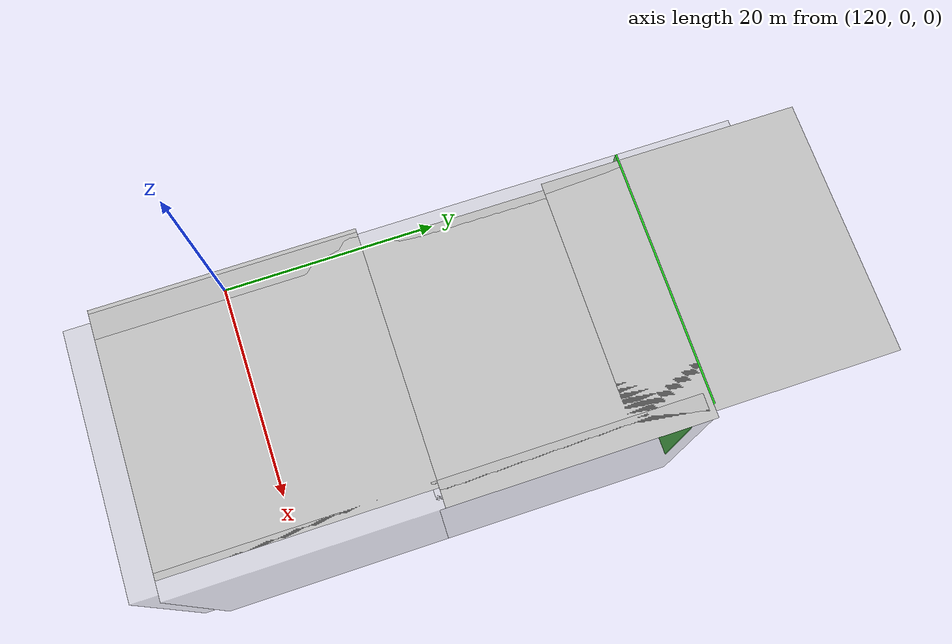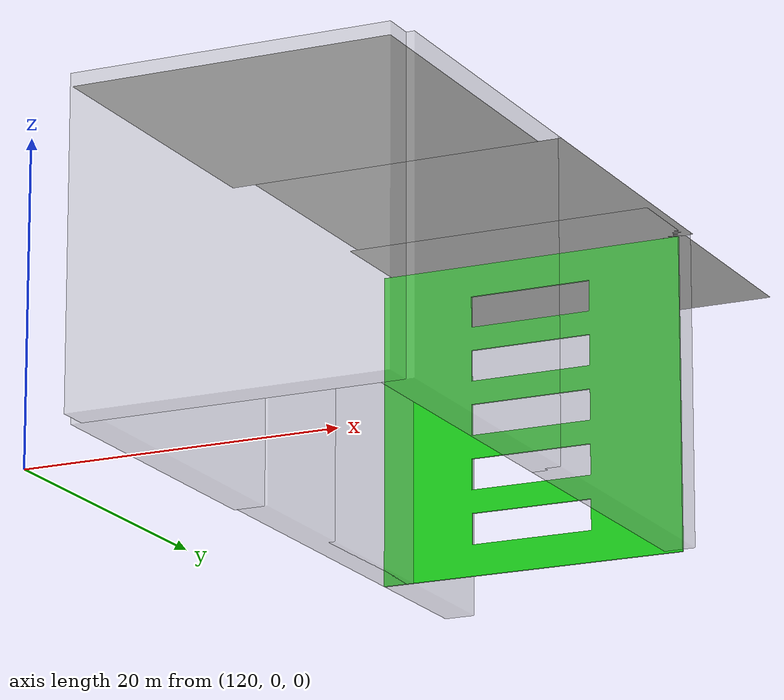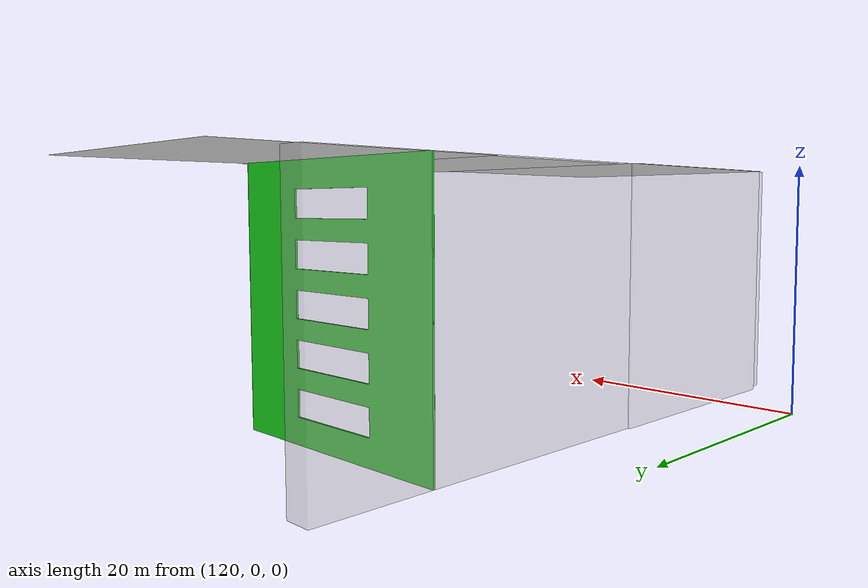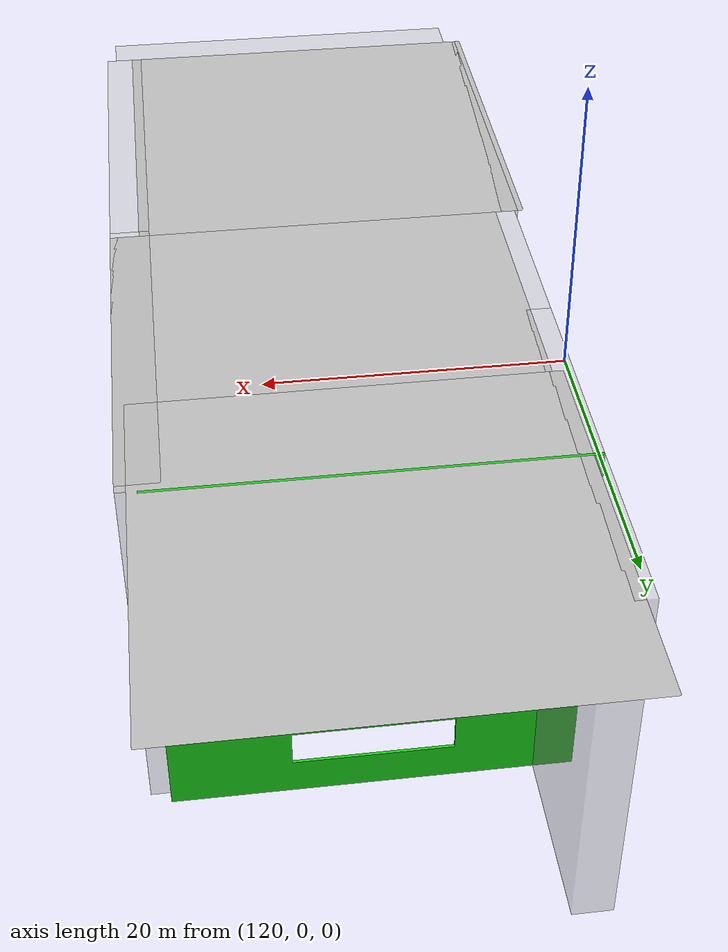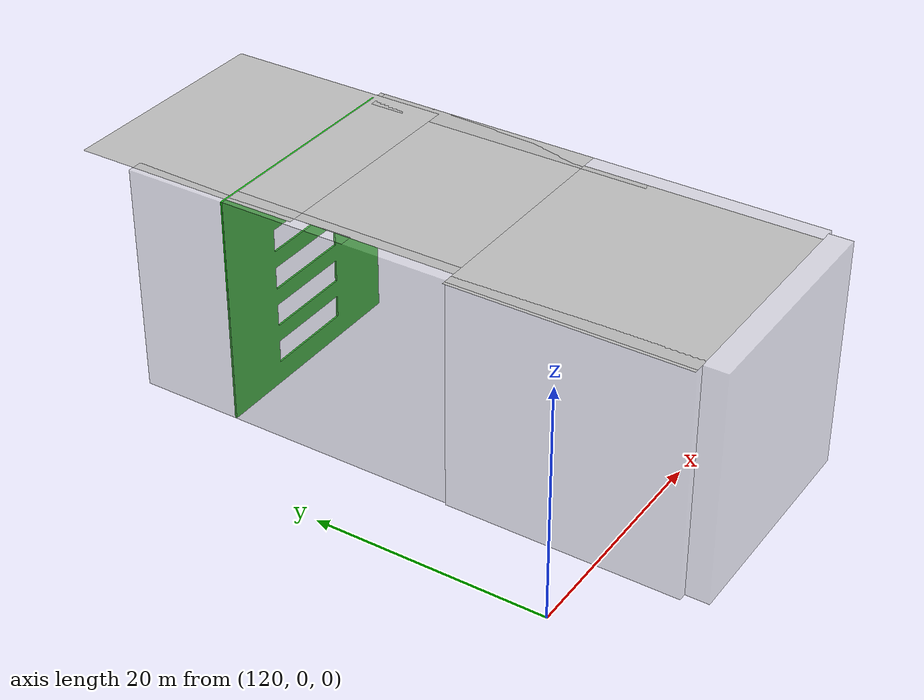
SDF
<?xml version='1.0'?>
<sdf version='1.7'>
  <model name='race_1_011'>
    <link name='link_clone_20'>
      <self_collide>0</self_collide>
      <enable_wind>0</enable_wind>
      <kinematic>0</kinematic>
      <pose>137.494 -8 10 1.5708 -0 0</pose>
      <visual name='visual'>
        <cast_shadows>1</cast_shadows>
        <transparency>0.6</transparency>
        <geometry>
          <box>
            <size>20 20 2</size>
          </box>
        </geometry>
        <material>
          <script>
            <uri>model://new_wall/materials/scripts</uri>
            <uri>model://new_wall/materials/textures/</uri>
            <name>NewWall/Image</name>
          </script>
          <shader type='pixel'/>
        </material>
        <pose>0 0 0 0 -0 0</pose>
      </visual>
      <collision name='collision'>
        <laser_retro>0</laser_retro>
        <max_contacts>10</max_contacts>
        <pose>0 0 0 0 -0 0</pose>
        <geometry>
          <box>
            <size>20 20 2</size>
          </box>
        </geometry>
        <surface>
          <friction>
            <ode>
              <mu>1</mu>
              <mu2>1</mu2>
              <fdir1>0 0 0</fdir1>
              <slip1>0</slip1>
              <slip2>0</slip2>
            </ode>
            <torsional>
              <coefficient>1</coefficient>
              <patch_radius>0</patch_radius>
              <surface_radius>0</surface_radius>
              <use_patch_radius>1</use_patch_radius>
              <ode>
                <slip>0</slip>
              </ode>
            </torsional>
          </friction>
          <bounce>
            <restitution_coefficient>0</restitution_coefficient>
            <threshold>1e+06</threshold>
          </bounce>
          <contact>
            <collide_without_contact>0</collide_without_contact>
            <collide_without_contact_bitmask>1</collide_without_contact_bitmask>
            <collide_bitmask>1</collide_bitmask>
            <ode>
              <soft_cfm>0</soft_cfm>
              <soft_erp>0.2</soft_erp>
              <kp>1e+13</kp>
              <kd>1</kd>
              <max_vel>0.01</max_vel>
              <min_depth>0</min_depth>
            </ode>
            <bullet>
              <split_impulse>1</split_impulse>
              <split_impulse_penetration_threshold>-0.01</split_impulse_penetration_threshold>
              <soft_cfm>0</soft_cfm>
              <soft_erp>0.2</soft_erp>
              <kp>1e+13</kp>
              <kd>1</kd>
            </bullet>
          </contact>
        </surface>
      </collision>
    </link>
    <link name='link_clone_3_clone_10'>
      <self_collide>0</self_collide>
      <enable_wind>0</enable_wind>
      <kinematic>0</kinematic>
      <pose>128 32 10 1.5708 -0 1.5708</pose>
      <visual name='visual'>
        <cast_shadows>1</cast_shadows>
        <transparency>0.6</transparency>
        <geometry>
          <box>
            <size>20 20 2</size>
          </box>
        </geometry>
        <material>
          <script>
            <uri>model://new_wall/materials/scripts</uri>
            <uri>model://new_wall/materials/textures/</uri>
            <name>NewWall/Image</name>
          </script>
          <shader type='pixel'/>
        </material>
        <pose>0 0 0 0 -0 0</pose>
      </visual>
      <collision name='collision'>
        <laser_retro>0</laser_retro>
        <max_contacts>10</max_contacts>
        <pose>0 0 0 0 -0 0</pose>
        <geometry>
          <box>
            <size>20 20 2</size>
          </box>
        </geometry>
        <surface>
          <friction>
            <ode>
              <mu>1</mu>
              <mu2>1</mu2>
              <fdir1>0 0 0</fdir1>
              <slip1>0</slip1>
              <slip2>0</slip2>
            </ode>
            <torsional>
              <coefficient>1</coefficient>
              <patch_radius>0</patch_radius>
              <surface_radius>0</surface_radius>
              <use_patch_radius>1</use_patch_radius>
              <ode>
                <slip>0</slip>
              </ode>
            </torsional>
          </friction>
          <bounce>
            <restitution_coefficient>0</restitution_coefficient>
            <threshold>1e+06</threshold>
          </bounce>
          <contact>
            <collide_without_contact>0</collide_without_contact>
            <collide_without_contact_bitmask>1</collide_without_contact_bitmask>
            <collide_bitmask>1</collide_bitmask>
            <ode>
              <soft_cfm>0</soft_cfm>
              <soft_erp>0.2</soft_erp>
              <kp>1e+13</kp>
              <kd>1</kd>
              <max_vel>0.01</max_vel>
              <min_depth>0</min_depth>
            </ode>
            <bullet>
              <split_impulse>1</split_impulse>
              <split_impulse_penetration_threshold>-0.01</split_impulse_penetration_threshold>
              <soft_cfm>0</soft_cfm>
              <soft_erp>0.2</soft_erp>
              <kp>1e+13</kp>
              <kd>1</kd>
            </bullet>
          </contact>
        </surface>
      </collision>
    </link>
    <link name='link_clone_3_clone_11'>
      <self_collide>0</self_collide>
      <enable_wind>0</enable_wind>
      <kinematic>0</kinematic>
      <pose>147 22.5682 10 1.5708 -0 1.5708</pose>
      <visual name='visual'>
        <cast_shadows>1</cast_shadows>
        <transparency>0.6</transparency>
        <geometry>
          <box>
            <size>20 20 2</size>
          </box>
        </geometry>
        <material>
          <script>
            <uri>model://new_wall/materials/scripts</uri>
            <uri>model://new_wall/materials/textures/</uri>
            <name>NewWall/Image</name>
          </script>
          <shader type='pixel'/>
        </material>
        <pose>0 0 0 0 -0 0</pose>
      </visual>
      <collision name='collision'>
        <laser_retro>0</laser_retro>
        <max_contacts>10</max_contacts>
        <pose>0 0 0 0 -0 0</pose>
        <geometry>
          <box>
            <size>20 20 2</size>
          </box>
        </geometry>
        <surface>
          <friction>
            <ode>
              <mu>1</mu>
              <mu2>1</mu2>
              <fdir1>0 0 0</fdir1>
              <slip1>0</slip1>
              <slip2>0</slip2>
            </ode>
            <torsional>
              <coefficient>1</coefficient>
              <patch_radius>0</patch_radius>
              <surface_radius>0</surface_radius>
              <use_patch_radius>1</use_patch_radius>
              <ode>
                <slip>0</slip>
              </ode>
            </torsional>
          </friction>
          <bounce>
            <restitution_coefficient>0</restitution_coefficient>
            <threshold>1e+06</threshold>
          </bounce>
          <contact>
            <collide_without_contact>0</collide_without_contact>
            <collide_without_contact_bitmask>1</collide_without_contact_bitmask>
            <collide_bitmask>1</collide_bitmask>
            <ode>
              <soft_cfm>0</soft_cfm>
              <soft_erp>0.2</soft_erp>
              <kp>1e+13</kp>
              <kd>1</kd>
              <max_vel>0.01</max_vel>
              <min_depth>0</min_depth>
            </ode>
            <bullet>
              <split_impulse>1</split_impulse>
              <split_impulse_penetration_threshold>-0.01</split_impulse_penetration_threshold>
              <soft_cfm>0</soft_cfm>
              <soft_erp>0.2</soft_erp>
              <kp>1e+13</kp>
              <kd>1</kd>
            </bullet>
          </contact>
        </surface>
      </collision>
    </link>
    <link name='link_clone_3_clone_12'>
      <self_collide>0</self_collide>
      <enable_wind>0</enable_wind>
      <kinematic>0</kinematic>
      <pose>128 23 10 1.5708 -0 1.5708</pose>
      <visual name='visual'>
        <cast_shadows>1</cast_shadows>
        <transparency>0.6</transparency>
        <geometry>
          <box>
            <size>20 20 2</size>
          </box>
        </geometry>
        <material>
          <script>
            <uri>model://new_wall/materials/scripts</uri>
            <uri>model://new_wall/materials/textures/</uri>
            <name>NewWall/Image</name>
          </script>
          <shader type='pixel'/>
        </material>
        <pose>0 0 0 0 -0 0</pose>
      </visual>
      <collision name='collision'>
        <laser_retro>0</laser_retro>
        <max_contacts>10</max_contacts>
        <pose>0 0 0 0 -0 0</pose>
        <geometry>
          <box>
            <size>20 20 2</size>
          </box>
        </geometry>
        <surface>
          <friction>
            <ode>
              <mu>1</mu>
              <mu2>1</mu2>
              <fdir1>0 0 0</fdir1>
              <slip1>0</slip1>
              <slip2>0</slip2>
            </ode>
            <torsional>
              <coefficient>1</coefficient>
              <patch_radius>0</patch_radius>
              <surface_radius>0</surface_radius>
              <use_patch_radius>1</use_patch_radius>
              <ode>
                <slip>0</slip>
              </ode>
            </torsional>
          </friction>
          <bounce>
            <restitution_coefficient>0</restitution_coefficient>
            <threshold>1e+06</threshold>
          </bounce>
          <contact>
            <collide_without_contact>0</collide_without_contact>
            <collide_without_contact_bitmask>1</collide_without_contact_bitmask>
            <collide_bitmask>1</collide_bitmask>
            <ode>
              <soft_cfm>0</soft_cfm>
              <soft_erp>0.2</soft_erp>
              <kp>1e+13</kp>
              <kd>1</kd>
              <max_vel>0.01</max_vel>
              <min_depth>0</min_depth>
            </ode>
            <bullet>
              <split_impulse>1</split_impulse>
              <split_impulse_penetration_threshold>-0.01</split_impulse_penetration_threshold>
              <soft_cfm>0</soft_cfm>
              <soft_erp>0.2</soft_erp>
              <kp>1e+13</kp>
              <kd>1</kd>
            </bullet>
          </contact>
        </surface>
      </collision>
    </link>
    <link name='link_clone_3_clone_13'>
      <self_collide>0</self_collide>
      <enable_wind>0</enable_wind>
      <kinematic>0</kinematic>
      <pose>147 3 10 1.5708 -0 1.5708</pose>
      <visual name='visual'>
        <cast_shadows>1</cast_shadows>
        <transparency>0.6</transparency>
        <geometry>
          <box>
            <size>20 20 2</size>
          </box>
        </geometry>
        <material>
          <script>
            <uri>model://new_wall/materials/scripts</uri>
            <uri>model://new_wall/materials/textures/</uri>
            <name>NewWall/Image</name>
          </script>
          <shader type='pixel'/>
        </material>
        <pose>0 0 0 0 -0 0</pose>
      </visual>
      <collision name='collision'>
        <laser_retro>0</laser_retro>
        <max_contacts>10</max_contacts>
        <pose>0 0 0 0 -0 0</pose>
        <geometry>
          <box>
            <size>20 20 2</size>
          </box>
        </geometry>
        <surface>
          <friction>
            <ode>
              <mu>1</mu>
              <mu2>1</mu2>
              <fdir1>0 0 0</fdir1>
              <slip1>0</slip1>
              <slip2>0</slip2>
            </ode>
            <torsional>
              <coefficient>1</coefficient>
              <patch_radius>0</patch_radius>
              <surface_radius>0</surface_radius>
              <use_patch_radius>1</use_patch_radius>
              <ode>
                <slip>0</slip>
              </ode>
            </torsional>
          </friction>
          <bounce>
            <restitution_coefficient>0</restitution_coefficient>
            <threshold>1e+06</threshold>
          </bounce>
          <contact>
            <collide_without_contact>0</collide_without_contact>
            <collide_without_contact_bitmask>1</collide_without_contact_bitmask>
            <collide_bitmask>1</collide_bitmask>
            <ode>
              <soft_cfm>0</soft_cfm>
              <soft_erp>0.2</soft_erp>
              <kp>1e+13</kp>
              <kd>1</kd>
              <max_vel>0.01</max_vel>
              <min_depth>0</min_depth>
            </ode>
            <bullet>
              <split_impulse>1</split_impulse>
              <split_impulse_penetration_threshold>-0.01</split_impulse_penetration_threshold>
              <soft_cfm>0</soft_cfm>
              <soft_erp>0.2</soft_erp>
              <kp>1e+13</kp>
              <kd>1</kd>
            </bullet>
          </contact>
        </surface>
      </collision>
    </link>
    <link name='link_clone_3_clone_14'>
      <self_collide>0</self_collide>
      <enable_wind>0</enable_wind>
      <kinematic>0</kinematic>
      <pose>127.818 3 10 1.5708 -0 1.5708</pose>
      <visual name='visual'>
        <cast_shadows>1</cast_shadows>
        <transparency>0.6</transparency>
        <geometry>
          <box>
            <size>20 20 2</size>
          </box>
        </geometry>
        <material>
          <script>
            <uri>model://new_wall/materials/scripts</uri>
            <uri>model://new_wall/materials/textures/</uri>
            <name>NewWall/Image</name>
          </script>
          <shader type='pixel'/>
        </material>
        <pose>0 0 0 0 -0 0</pose>
      </visual>
      <collision name='collision'>
        <laser_retro>0</laser_retro>
        <max_contacts>10</max_contacts>
        <pose>0 0 0 0 -0 0</pose>
        <geometry>
          <box>
            <size>20 20 2</size>
          </box>
        </geometry>
        <surface>
          <friction>
            <ode>
              <mu>1</mu>
              <mu2>1</mu2>
              <fdir1>0 0 0</fdir1>
              <slip1>0</slip1>
              <slip2>0</slip2>
            </ode>
            <torsional>
              <coefficient>1</coefficient>
              <patch_radius>0</patch_radius>
              <surface_radius>0</surface_radius>
              <use_patch_radius>1</use_patch_radius>
              <ode>
                <slip>0</slip>
              </ode>
            </torsional>
          </friction>
          <bounce>
            <restitution_coefficient>0</restitution_coefficient>
            <threshold>1e+06</threshold>
          </bounce>
          <contact>
            <collide_without_contact>0</collide_without_contact>
            <collide_without_contact_bitmask>1</collide_without_contact_bitmask>
            <collide_bitmask>1</collide_bitmask>
            <ode>
              <soft_cfm>0</soft_cfm>
              <soft_erp>0.2</soft_erp>
              <kp>1e+13</kp>
              <kd>1</kd>
              <max_vel>0.01</max_vel>
              <min_depth>0</min_depth>
            </ode>
            <bullet>
              <split_impulse>1</split_impulse>
              <split_impulse_penetration_threshold>-0.01</split_impulse_penetration_threshold>
              <soft_cfm>0</soft_cfm>
              <soft_erp>0.2</soft_erp>
              <kp>1e+13</kp>
              <kd>1</kd>
            </bullet>
          </contact>
        </surface>
      </collision>
    </link>
    <model name='oneSidedPlane_2_clone_11'>
      <static>1</static>
      <link name='link'>
        <collision name='collision'>
          <geometry>
            <box>
              <size>20 20 0.1</size>
            </box>
          </geometry>
          <max_contacts>10</max_contacts>
          <surface>
            <contact>
              <ode/>
            </contact>
            <bounce/>
            <friction>
              <torsional>
                <ode/>
              </torsional>
              <ode/>
            </friction>
          </surface>
        </collision>
        <visual name='visual'>
          <cast_shadows>0</cast_shadows>
          <geometry>
            <mesh>
              <scale>1 1 1</scale>
              <uri>model://oneSidedPlane_2/wall1.obj</uri>
            </mesh>
          </geometry>
        </visual>
        <self_collide>0</self_collide>
        <enable_wind>0</enable_wind>
        <kinematic>0</kinematic>
      </link>
      <pose>137.487 37 20 0 -0 0</pose>
    </model>
    <model name='oneSidedPlane_2_clone_8'>
      <static>1</static>
      <link name='link'>
        <collision name='collision'>
          <geometry>
            <box>
              <size>20 20 0.1</size>
            </box>
          </geometry>
          <max_contacts>10</max_contacts>
          <surface>
            <contact>
              <ode/>
            </contact>
            <bounce/>
            <friction>
              <torsional>
                <ode/>
              </torsional>
              <ode/>
            </friction>
          </surface>
        </collision>
        <visual name='visual'>
          <cast_shadows>0</cast_shadows>
          <geometry>
            <mesh>
              <scale>1 1 1</scale>
              <uri>model://oneSidedPlane_2/wall1.obj</uri>
            </mesh>
          </geometry>
        </visual>
        <self_collide>0</self_collide>
        <enable_wind>0</enable_wind>
        <kinematic>0</kinematic>
      </link>
      <pose>136.526 3 20 0 -0 0</pose>
    </model>
    <model name='oneSidedPlane_2_clone_9'>
      <static>1</static>
      <link name='link'>
        <collision name='collision'>
          <geometry>
            <box>
              <size>20 20 0.1</size>
            </box>
          </geometry>
          <max_contacts>10</max_contacts>
          <surface>
            <contact>
              <ode/>
            </contact>
            <bounce/>
            <friction>
              <torsional>
                <ode/>
              </torsional>
              <ode/>
            </friction>
          </surface>
        </collision>
        <visual name='visual'>
          <cast_shadows>0</cast_shadows>
          <geometry>
            <mesh>
              <scale>1 1 1</scale>
              <uri>model://oneSidedPlane_2/wall1.obj</uri>
            </mesh>
          </geometry>
        </visual>
        <self_collide>0</self_collide>
        <enable_wind>0</enable_wind>
        <kinematic>0</kinematic>
      </link>
      <pose>138 23 20 0 -0 0</pose>
    </model>
    <model name='partition_2'>
      <static>1</static>
      <link name='link'>
        <pose>-10 0 0 1.57 -0 0</pose>
        <collision name='collision'>
          <geometry>
            <mesh>
              <scale>0.001 0.001 0.001</scale>
              <uri>model://partition_2/model.stl</uri>
            </mesh>
          </geometry>
          <max_contacts>10</max_contacts>
          <surface>
            <contact>
              <ode/>
            </contact>
            <bounce/>
            <friction>
              <torsional>
                <ode/>
              </torsional>
              <ode/>
            </friction>
          </surface>
        </collision>
        <visual name='visual'>
          <cast_shadows>1</cast_shadows>
          <geometry>
            <mesh>
              <scale>0.001 0.001 0.001</scale>
              <uri>model://partition_2/model.stl</uri>
            </mesh>
          </geometry>
          <material>
            <ambient>0.1 0.8 0.1 1</ambient>
            <diffuse>0.1 0.8 0.1 1</diffuse>
            <specular>0.1 0.1 0.1 0</specular>
            <emissive>0.1 0.2 0.1 1</emissive>
          </material>
        </visual>
        <self_collide>0</self_collide>
        <enable_wind>0</enable_wind>
        <kinematic>0</kinematic>
      </link>
      <pose>137 33 0 0 0 -3.14159</pose>
    </model>
    <static>1</static>
    <allow_auto_disable>1</allow_auto_disable>
  </model>
</sdf>
